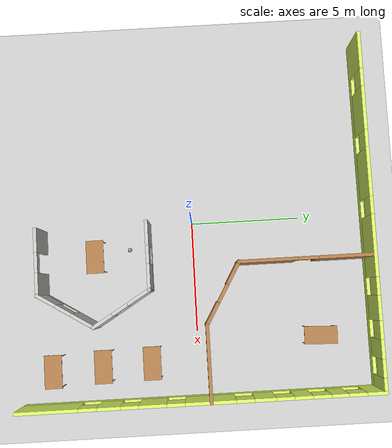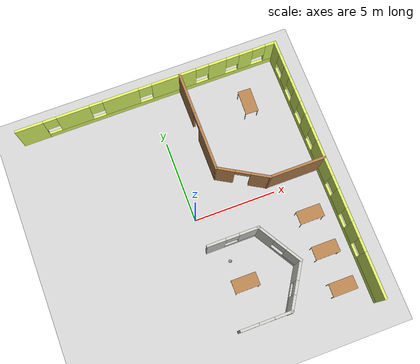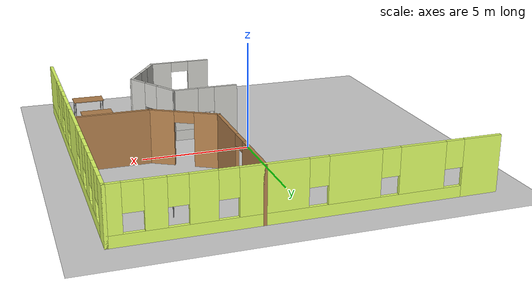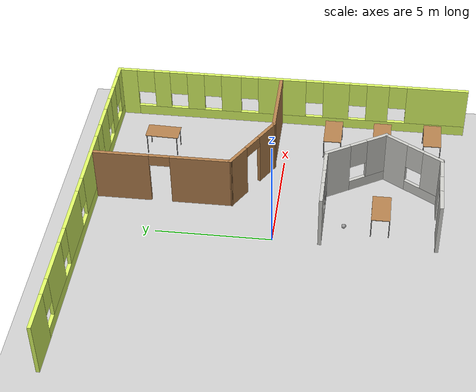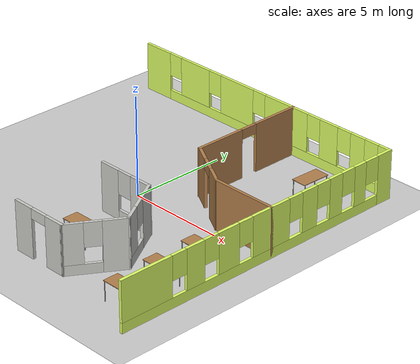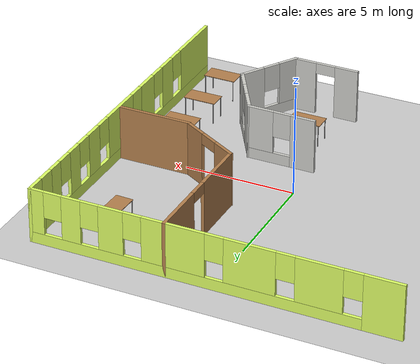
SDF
<sdf version="1.6">
 <world name="default">
  <model name="ground_plane">
   <static>1</static>
   <link name="link">
    <collision name="collision">
     <geometry><plane><normal>0 0 1</normal><size>100 100</size></plane></geometry>
     <surface>
      <contact><collide_bitmask>65535</collide_bitmask></contact>
      <friction><ode><mu>100</mu><mu2>50</mu2></ode></friction>
     </surface>
    </collision>
    <visual name="visual">
     <cast_shadows>0</cast_shadows>
     <geometry><plane><normal>0 0 1</normal><size>100 100</size></plane></geometry>
     <material>
      <script><uri>file://media/materials/scripts/gazebo.material</uri><name>Gazebo/Grey</name></script>
     </material>
    </visual>
   </link>
  </model>
  <model name="myBuilding">
   <pose>-0.01524 -2.0117 0 0 -0 0</pose>
   <link name="Wall_14">
    <pose>2.01524 7.0117 0 0 0 -1.5708</pose>
    <visual name="Wall_14_Visual_0">
     <pose>-1.79003 0 1.25 0 -0 0</pose>
     <geometry><box><size>2.56994 0.15 2.5</size></box></geometry>
     <material>
      <script><uri>file://media/materials/scripts/gazebo.material</uri><name>Gazebo/Wood</name></script>
      <ambient>1 0.976471 0.866667 1</ambient>
     </material>
     <meta><layer>0</layer></meta>
    </visual>
    <collision name="Wall_14_Collision_0">
     <geometry><box><size>2.56994 0.15 2.5</size></box></geometry>
     <pose>-1.79003 0 1.25 0 -0 0</pose>
    </collision>
    <visual name="Wall_14_Visual_1">
     <pose>1.73497 0 1.25 0 -0 0</pose>
     <geometry><box><size>2.68006 0.15 2.5</size></box></geometry>
     <material>
      <script><uri>file://media/materials/scripts/gazebo.material</uri><name>Gazebo/Wood</name></script>
      <ambient>1 0.976471 0.866667 1</ambient>
     </material>
     <meta><layer>0</layer></meta>
    </visual>
    <collision name="Wall_14_Collision_1">
     <geometry><box><size>2.68006 0.15 2.5</size></box></geometry>
     <pose>1.73497 0 1.25 0 -0 0</pose>
    </collision>
    <visual name="Wall_14_Visual_2">
     <pose>-0.055061 0 2.25 0 -0 0</pose>
     <geometry><box><size>0.9 0.15 0.5</size></box></geometry>
     <material>
      <script><uri>file://media/materials/scripts/gazebo.material</uri><name>Gazebo/Wood</name></script>
      <ambient>1 0.976471 0.866667 1</ambient>
     </material>
     <meta><layer>0</layer></meta>
    </visual>
    <collision name="Wall_14_Collision_2">
     <geometry><box><size>0.9 0.15 0.5</size></box></geometry>
     <pose>-0.055061 0 2.25 0 -0 0</pose>
    </collision>
   </link>
   <link name="Wall_16">
    <pose>3.35774 3.2367 0 0 0 -0.523547</pose>
    <visual name="Wall_16_Visual_0">
     <pose>-1.0429 0 1.25 0 -0 0</pose>
     <geometry><box><size>1.1642 0.15 2.5</size></box></geometry>
     <material>
      <script><uri>file://media/materials/scripts/gazebo.material</uri><name>Gazebo/Wood</name></script>
      <ambient>1 0.976471 0.866667 1</ambient>
     </material>
     <meta><layer>0</layer></meta>
    </visual>
    <collision name="Wall_16_Collision_0">
     <geometry><box><size>1.1642 0.15 2.5</size></box></geometry>
     <pose>-1.0429 0 1.25 0 -0 0</pose>
    </collision>
    <visual name="Wall_16_Visual_1">
     <pose>1.0321 0 1.25 0 -0 0</pose>
     <geometry><box><size>1.1858 0.15 2.5</size></box></geometry>
     <material>
      <script><uri>file://media/materials/scripts/gazebo.material</uri><name>Gazebo/Wood</name></script>
      <ambient>1 0.976471 0.866667 1</ambient>
     </material>
     <meta><layer>0</layer></meta>
    </visual>
    <collision name="Wall_16_Collision_1">
     <geometry><box><size>1.1858 0.15 2.5</size></box></geometry>
     <pose>1.0321 0 1.25 0 -0 0</pose>
    </collision>
    <visual name="Wall_16_Visual_2">
     <pose>-0.010799 0 2.25 0 -0 0</pose>
     <geometry><box><size>0.9 0.15 0.5</size></box></geometry>
     <material>
      <script><uri>file://media/materials/scripts/gazebo.material</uri><name>Gazebo/Wood</name></script>
      <ambient>1 0.976471 0.866667 1</ambient>
     </material>
     <meta><layer>0</layer></meta>
    </visual>
    <collision name="Wall_16_Collision_2">
     <geometry><box><size>0.9 0.15 0.5</size></box></geometry>
     <pose>-0.010799 0 2.25 0 -0 0</pose>
    </collision>
   </link>
   <link name="Wall_18">
    <collision name="Wall_18_Collision">
     <geometry><box><size>3.465 0.15 2.5</size></box></geometry>
     <pose>0 0 1.25 0 -0 0</pose>
    </collision>
    <visual name="Wall_18_Visual">
     <pose>0 0 1.25 0 -0 0</pose>
     <geometry><box><size>3.465 0.15 2.5</size></box></geometry>
     <material>
      <script><uri>file://media/materials/scripts/gazebo.material</uri><name>Gazebo/Wood</name></script>
      <ambient>1 0.976471 0.866667 1</ambient>
     </material>
     <meta><layer>0</layer></meta>
    </visual>
    <pose>6.35774 2.4617 0 0 -0 0</pose>
   </link>
   <link name="Wall_37">
    <pose>1.51524 0.011703 0 0 -0 0</pose>
    <visual name="Wall_37_Visual_0">
     <pose>-1.00885 0 1.25 0 -0 0</pose>
     <geometry><box><size>1.1323 0.15 2.5</size></box></geometry>
     <material>
      <script><uri>file://media/materials/scripts/gazebo.material</uri><name>Gazebo/CeilingTiled</name></script>
      <ambient>0.662745 0.929412 1 1</ambient>
     </material>
     <meta><layer>0</layer></meta>
    </visual>
    <collision name="Wall_37_Collision_0">
     <geometry><box><size>1.1323 0.15 2.5</size></box></geometry>
     <pose>-1.00885 0 1.25 0 -0 0</pose>
    </collision>
    <visual name="Wall_37_Visual_1">
     <pose>0.566152 0 0.25 0 -0 0</pose>
     <geometry><box><size>2.0177 0.15 0.5</size></box></geometry>
     <material>
      <script><uri>file://media/materials/scripts/gazebo.material</uri><name>Gazebo/CeilingTiled</name></script>
      <ambient>0.662745 0.929412 1 1</ambient>
     </material>
     <meta><layer>0</layer></meta>
    </visual>
    <collision name="Wall_37_Collision_1">
     <geometry><box><size>2.0177 0.15 0.5</size></box></geometry>
     <pose>0.566152 0 0.25 0 -0 0</pose>
    </collision>
    <visual name="Wall_37_Visual_2">
     <pose>0.966152 0 1.5 0 -0 0</pose>
     <geometry><box><size>1.2177 0.15 2</size></box></geometry>
     <material>
      <script><uri>file://media/materials/scripts/gazebo.material</uri><name>Gazebo/CeilingTiled</name></script>
      <ambient>0.662745 0.929412 1 1</ambient>
     </material>
     <meta><layer>0</layer></meta>
    </visual>
    <collision name="Wall_37_Collision_2">
     <geometry><box><size>1.2177 0.15 2</size></box></geometry>
     <pose>0.966152 0 1.5 0 -0 0</pose>
    </collision>
    <visual name="Wall_37_Visual_3">
     <pose>-0.042697 0 1.9 0 -0 0</pose>
     <geometry><box><size>0.8 0.15 1.2</size></box></geometry>
     <material>
      <script><uri>file://media/materials/scripts/gazebo.material</uri><name>Gazebo/CeilingTiled</name></script>
      <ambient>0.662745 0.929412 1 1</ambient>
     </material>
     <meta><layer>0</layer></meta>
    </visual>
    <collision name="Wall_37_Collision_3">
     <geometry><box><size>0.8 0.15 1.2</size></box></geometry>
     <pose>-0.042697 0 1.9 0 -0 0</pose>
    </collision>
   </link>
   <link name="Wall_4">
    <pose>0.015237 10.0117 0 0 -0 0</pose>
    <visual name="Wall_4_Visual_0">
     <pose>-7.22792 0 1.25 0 -0 0</pose>
     <geometry><box><size>1.69415 0.15 2.5</size></box></geometry>
     <material>
      <script><uri>file://media/materials/scripts/gazebo.material</uri><name>Gazebo/Grey</name></script>
      <ambient>0.870588 1 0.4 1</ambient>
     </material>
     <meta><layer>0</layer></meta>
    </visual>
    <collision name="Wall_4_Collision_0">
     <geometry><box><size>1.69415 0.15 2.5</size></box></geometry>
     <pose>-7.22792 0 1.25 0 -0 0</pose>
    </collision>
    <visual name="Wall_4_Visual_1">
     <pose>0.847076 0 0.25 0 -0 0</pose>
     <geometry><box><size>14.4558 0.15 0.5</size></box></geometry>
     <material>
      <script><uri>file://media/materials/scripts/gazebo.material</uri><name>Gazebo/Grey</name></script>
      <ambient>0.870588 1 0.4 1</ambient>
     </material>
     <meta><layer>0</layer></meta>
    </visual>
    <collision name="Wall_4_Collision_1">
     <geometry><box><size>14.4558 0.15 0.5</size></box></geometry>
     <pose>0.847076 0 0.25 0 -0 0</pose>
    </collision>
    <visual name="Wall_4_Visual_2">
     <pose>-4.58109 0 1.5 0 -0 0</pose>
     <geometry><box><size>1.99952 0.15 2</size></box></geometry>
     <material>
      <script><uri>file://media/materials/scripts/gazebo.material</uri><name>Gazebo/Grey</name></script>
      <ambient>0.870588 1 0.4 1</ambient>
     </material>
     <meta><layer>0</layer></meta>
    </visual>
    <collision name="Wall_4_Collision_2">
     <geometry><box><size>1.99952 0.15 2</size></box></geometry>
     <pose>-4.58109 0 1.5 0 -0 0</pose>
    </collision>
    <visual name="Wall_4_Visual_3">
     <pose>-1.6739 0 1.5 0 -0 0</pose>
     <geometry><box><size>2.21487 0.15 2</size></box></geometry>
     <material>
      <script><uri>file://media/materials/scripts/gazebo.material</uri><name>Gazebo/Grey</name></script>
      <ambient>0.870588 1 0.4 1</ambient>
     </material>
     <meta><layer>0</layer></meta>
    </visual>
    <collision name="Wall_4_Collision_3">
     <geometry><box><size>2.21487 0.15 2</size></box></geometry>
     <pose>-1.6739 0 1.5 0 -0 0</pose>
    </collision>
    <visual name="Wall_4_Visual_4">
     <pose>1.61784 0 1.5 0 -0 0</pose>
     <geometry><box><size>2.76862 0.15 2</size></box></geometry>
     <material>
      <script><uri>file://media/materials/scripts/gazebo.material</uri><name>Gazebo/Grey</name></script>
      <ambient>0.870588 1 0.4 1</ambient>
     </material>
     <meta><layer>0</layer></meta>
    </visual>
    <collision name="Wall_4_Collision_4">
     <geometry><box><size>2.76862 0.15 2</size></box></geometry>
     <pose>1.61784 0 1.5 0 -0 0</pose>
    </collision>
    <visual name="Wall_4_Visual_5">
     <pose>4.35583 0 1.5 0 -0 0</pose>
     <geometry><box><size>1.10736 0.15 2</size></box></geometry>
     <material>
      <script><uri>file://media/materials/scripts/gazebo.material</uri><name>Gazebo/Grey</name></script>
      <ambient>0.870588 1 0.4 1</ambient>
     </material>
     <meta><layer>0</layer></meta>
    </visual>
    <collision name="Wall_4_Collision_5">
     <geometry><box><size>1.10736 0.15 2</size></box></geometry>
     <pose>4.35583 0 1.5 0 -0 0</pose>
    </collision>
    <visual name="Wall_4_Visual_6">
     <pose>6.14014 0 1.5 0 -0 0</pose>
     <geometry><box><size>0.861253 0.15 2</size></box></geometry>
     <material>
      <script><uri>file://media/materials/scripts/gazebo.material</uri><name>Gazebo/Grey</name></script>
      <ambient>0.870588 1 0.4 1</ambient>
     </material>
     <meta><layer>0</layer></meta>
    </visual>
    <collision name="Wall_4_Collision_6">
     <geometry><box><size>0.861253 0.15 2</size></box></geometry>
     <pose>6.14014 0 1.5 0 -0 0</pose>
    </collision>
    <visual name="Wall_4_Visual_7">
     <pose>7.72288 0 1.5 0 -0 0</pose>
     <geometry><box><size>0.704231 0.15 2</size></box></geometry>
     <material>
      <script><uri>file://media/materials/scripts/gazebo.material</uri><name>Gazebo/Grey</name></script>
      <ambient>0.870588 1 0.4 1</ambient>
     </material>
     <meta><layer>0</layer></meta>
    </visual>
    <collision name="Wall_4_Collision_7">
     <geometry><box><size>0.704231 0.15 2</size></box></geometry>
     <pose>7.72288 0 1.5 0 -0 0</pose>
    </collision>
    <visual name="Wall_4_Visual_8">
     <pose>-5.98085 0 1.9 0 -0 0</pose>
     <geometry><box><size>0.8 0.15 1.2</size></box></geometry>
     <material>
      <script><uri>file://media/materials/scripts/gazebo.material</uri><name>Gazebo/Grey</name></script>
      <ambient>0.870588 1 0.4 1</ambient>
     </material>
     <meta><layer>0</layer></meta>
    </visual>
    <collision name="Wall_4_Collision_8">
     <geometry><box><size>0.8 0.15 1.2</size></box></geometry>
     <pose>-5.98085 0 1.9 0 -0 0</pose>
    </collision>
    <visual name="Wall_4_Visual_9">
     <pose>-3.18133 0 1.9 0 -0 0</pose>
     <geometry><box><size>0.8 0.15 1.2</size></box></geometry>
     <material>
      <script><uri>file://media/materials/scripts/gazebo.material</uri><name>Gazebo/Grey</name></script>
      <ambient>0.870588 1 0.4 1</ambient>
     </material>
     <meta><layer>0</layer></meta>
    </visual>
    <collision name="Wall_4_Collision_9">
     <geometry><box><size>0.8 0.15 1.2</size></box></geometry>
     <pose>-3.18133 0 1.9 0 -0 0</pose>
    </collision>
    <visual name="Wall_4_Visual_10">
     <pose>-0.166464 0 1.9 0 -0 0</pose>
     <geometry><box><size>0.8 0.15 1.2</size></box></geometry>
     <material>
      <script><uri>file://media/materials/scripts/gazebo.material</uri><name>Gazebo/Grey</name></script>
      <ambient>0.870588 1 0.4 1</ambient>
     </material>
     <meta><layer>0</layer></meta>
    </visual>
    <collision name="Wall_4_Collision_10">
     <geometry><box><size>0.8 0.15 1.2</size></box></geometry>
     <pose>-0.166464 0 1.9 0 -0 0</pose>
    </collision>
    <visual name="Wall_4_Visual_11">
     <pose>3.40215 0 1.9 0 -0 0</pose>
     <geometry><box><size>0.8 0.15 1.2</size></box></geometry>
     <material>
      <script><uri>file://media/materials/scripts/gazebo.material</uri><name>Gazebo/Grey</name></script>
      <ambient>0.870588 1 0.4 1</ambient>
     </material>
     <meta><layer>0</layer></meta>
    </visual>
    <collision name="Wall_4_Collision_11">
     <geometry><box><size>0.8 0.15 1.2</size></box></geometry>
     <pose>3.40215 0 1.9 0 -0 0</pose>
    </collision>
    <visual name="Wall_4_Visual_12">
     <pose>5.30952 0 1.9 0 -0 0</pose>
     <geometry><box><size>0.8 0.15 1.2</size></box></geometry>
     <material>
      <script><uri>file://media/materials/scripts/gazebo.material</uri><name>Gazebo/Grey</name></script>
      <ambient>0.870588 1 0.4 1</ambient>
     </material>
     <meta><layer>0</layer></meta>
    </visual>
    <collision name="Wall_4_Collision_12">
     <geometry><box><size>0.8 0.15 1.2</size></box></geometry>
     <pose>5.30952 0 1.9 0 -0 0</pose>
    </collision>
    <visual name="Wall_4_Visual_13">
     <pose>6.97077 0 1.9 0 -0 0</pose>
     <geometry><box><size>0.8 0.15 1.2</size></box></geometry>
     <material>
      <script><uri>file://media/materials/scripts/gazebo.material</uri><name>Gazebo/Grey</name></script>
      <ambient>0.870588 1 0.4 1</ambient>
     </material>
     <meta><layer>0</layer></meta>
    </visual>
    <collision name="Wall_4_Collision_13">
     <geometry><box><size>0.8 0.15 1.2</size></box></geometry>
     <pose>6.97077 0 1.9 0 -0 0</pose>
    </collision>
   </link>
   <link name="Wall_41">
    <pose>1.55274 -4.8883 0 0 -0 3.14159</pose>
    <visual name="Wall_41_Visual_0">
     <pose>-0.993879 0 1.25 0 -0 0</pose>
     <geometry><box><size>1.08724 0.15 2.5</size></box></geometry>
     <material>
      <script><uri>file://media/materials/scripts/gazebo.material</uri><name>Gazebo/CeilingTiled</name></script>
      <ambient>0.662745 0.929412 1 1</ambient>
     </material>
     <meta><layer>0</layer></meta>
    </visual>
    <collision name="Wall_41_Collision_0">
     <geometry><box><size>1.08724 0.15 2.5</size></box></geometry>
     <pose>-0.993879 0 1.25 0 -0 0</pose>
    </collision>
    <visual name="Wall_41_Visual_1">
     <pose>0.993621 0 1.25 0 -0 0</pose>
     <geometry><box><size>1.08776 0.15 2.5</size></box></geometry>
     <material>
      <script><uri>file://media/materials/scripts/gazebo.material</uri><name>Gazebo/CeilingTiled</name></script>
      <ambient>0.662745 0.929412 1 1</ambient>
     </material>
     <meta><layer>0</layer></meta>
    </visual>
    <collision name="Wall_41_Collision_1">
     <geometry><box><size>1.08776 0.15 2.5</size></box></geometry>
     <pose>0.993621 0 1.25 0 -0 0</pose>
    </collision>
    <visual name="Wall_41_Visual_2">
     <pose>-0.000257 0 2.25 0 -0 0</pose>
     <geometry><box><size>0.9 0.15 0.5</size></box></geometry>
     <material>
      <script><uri>file://media/materials/scripts/gazebo.material</uri><name>Gazebo/CeilingTiled</name></script>
      <ambient>0.662745 0.929412 1 1</ambient>
     </material>
     <meta><layer>0</layer></meta>
    </visual>
    <collision name="Wall_41_Collision_2">
     <geometry><box><size>0.9 0.15 0.5</size></box></geometry>
     <pose>-0.000257 0 2.25 0 -0 0</pose>
    </collision>
   </link>
   <link name="Wall_49">
    <pose>3.76524 -1.2383 0 0 0 -1.03038</pose>
    <visual name="Wall_49_Visual_0">
     <pose>-0.922396 0 1.25 0 -0 0</pose>
     <geometry><box><size>1.22069 0.15 2.5</size></box></geometry>
     <material>
      <script><uri>file://media/materials/scripts/gazebo.material</uri><name>Gazebo/CeilingTiled</name></script>
      <ambient>0.662745 0.929412 1 1</ambient>
     </material>
     <meta><layer>0</layer></meta>
    </visual>
    <collision name="Wall_49_Collision_0">
     <geometry><box><size>1.22069 0.15 2.5</size></box></geometry>
     <pose>-0.922396 0 1.25 0 -0 0</pose>
    </collision>
    <visual name="Wall_49_Visual_1">
     <pose>0.610342 0 0.25 0 -0 0</pose>
     <geometry><box><size>1.84479 0.15 0.5</size></box></geometry>
     <material>
      <script><uri>file://media/materials/scripts/gazebo.material</uri><name>Gazebo/CeilingTiled</name></script>
      <ambient>0.662745 0.929412 1 1</ambient>
     </material>
     <meta><layer>0</layer></meta>
    </visual>
    <collision name="Wall_49_Collision_1">
     <geometry><box><size>1.84479 0.15 0.5</size></box></geometry>
     <pose>0.610342 0 0.25 0 -0 0</pose>
    </collision>
    <visual name="Wall_49_Visual_2">
     <pose>1.01034 0 1.5 0 -0 0</pose>
     <geometry><box><size>1.04479 0.15 2</size></box></geometry>
     <material>
      <script><uri>file://media/materials/scripts/gazebo.material</uri><name>Gazebo/CeilingTiled</name></script>
      <ambient>0.662745 0.929412 1 1</ambient>
     </material>
     <meta><layer>0</layer></meta>
    </visual>
    <collision name="Wall_49_Collision_2">
     <geometry><box><size>1.04479 0.15 2</size></box></geometry>
     <pose>1.01034 0 1.5 0 -0 0</pose>
    </collision>
    <visual name="Wall_49_Visual_3">
     <pose>0.087947 0 1.9 0 -0 0</pose>
     <geometry><box><size>0.8 0.15 1.2</size></box></geometry>
     <material>
      <script><uri>file://media/materials/scripts/gazebo.material</uri><name>Gazebo/CeilingTiled</name></script>
      <ambient>0.662745 0.929412 1 1</ambient>
     </material>
     <meta><layer>0</layer></meta>
    </visual>
    <collision name="Wall_49_Collision_3">
     <geometry><box><size>0.8 0.15 1.2</size></box></geometry>
     <pose>0.087947 0 1.9 0 -0 0</pose>
    </collision>
   </link>
   <link name="Wall_50">
    <pose>3.76524 -3.6883 0 0 0 -2.1294</pose>
    <visual name="Wall_50_Visual_0">
     <pose>-0.889397 0 1.25 0 -0 0</pose>
     <geometry><box><size>1.2014 0.15 2.5</size></box></geometry>
     <material>
      <script><uri>file://media/materials/scripts/gazebo.material</uri><name>Gazebo/CeilingTiled</name></script>
      <ambient>0.662745 0.929412 1 1</ambient>
     </material>
     <meta><layer>0</layer></meta>
    </visual>
    <collision name="Wall_50_Collision_0">
     <geometry><box><size>1.2014 0.15 2.5</size></box></geometry>
     <pose>-0.889397 0 1.25 0 -0 0</pose>
    </collision>
    <visual name="Wall_50_Visual_1">
     <pose>0.6007 0 0.25 0 -0 0</pose>
     <geometry><box><size>1.77879 0.15 0.5</size></box></geometry>
     <material>
      <script><uri>file://media/materials/scripts/gazebo.material</uri><name>Gazebo/CeilingTiled</name></script>
      <ambient>0.662745 0.929412 1 1</ambient>
     </material>
     <meta><layer>0</layer></meta>
    </visual>
    <collision name="Wall_50_Collision_1">
     <geometry><box><size>1.77879 0.15 0.5</size></box></geometry>
     <pose>0.6007 0 0.25 0 -0 0</pose>
    </collision>
    <visual name="Wall_50_Visual_2">
     <pose>1.0007 0 1.5 0 -0 0</pose>
     <geometry><box><size>0.978794 0.15 2</size></box></geometry>
     <material>
      <script><uri>file://media/materials/scripts/gazebo.material</uri><name>Gazebo/CeilingTiled</name></script>
      <ambient>0.662745 0.929412 1 1</ambient>
     </material>
     <meta><layer>0</layer></meta>
    </visual>
    <collision name="Wall_50_Collision_2">
     <geometry><box><size>0.978794 0.15 2</size></box></geometry>
     <pose>1.0007 0 1.5 0 -0 0</pose>
    </collision>
    <visual name="Wall_50_Visual_3">
     <pose>0.111303 0 1.9 0 -0 0</pose>
     <geometry><box><size>0.8 0.15 1.2</size></box></geometry>
     <material>
      <script><uri>file://media/materials/scripts/gazebo.material</uri><name>Gazebo/CeilingTiled</name></script>
      <ambient>0.662745 0.929412 1 1</ambient>
     </material>
     <meta><layer>0</layer></meta>
    </visual>
    <collision name="Wall_50_Collision_3">
     <geometry><box><size>0.8 0.15 1.2</size></box></geometry>
     <pose>0.111303 0 1.9 0 -0 0</pose>
    </collision>
   </link>
   <link name="Wall_6">
    <pose>8.01524 2.0117 0 0 0 -1.5708</pose>
    <visual name="Wall_6_Visual_0">
     <pose>-7.62793 0 1.25 0 -0 0</pose>
     <geometry><box><size>0.89414 0.15 2.5</size></box></geometry>
     <material>
      <script><uri>file://media/materials/scripts/gazebo.material</uri><name>Gazebo/Grey</name></script>
      <ambient>0.870588 1 0.4 1</ambient>
     </material>
     <meta><layer>0</layer></meta>
    </visual>
    <collision name="Wall_6_Collision_0">
     <geometry><box><size>0.89414 0.15 2.5</size></box></geometry>
     <pose>-7.62793 0 1.25 0 -0 0</pose>
    </collision>
    <visual name="Wall_6_Visual_1">
     <pose>0.44707 0 0.25 0 -0 0</pose>
     <geometry><box><size>15.2559 0.15 0.5</size></box></geometry>
     <material>
      <script><uri>file://media/materials/scripts/gazebo.material</uri><name>Gazebo/Grey</name></script>
      <ambient>0.870588 1 0.4 1</ambient>
     </material>
     <meta><layer>0</layer></meta>
    </visual>
    <collision name="Wall_6_Collision_1">
     <geometry><box><size>15.2559 0.15 0.5</size></box></geometry>
     <pose>0.44707 0 0.25 0 -0 0</pose>
    </collision>
    <visual name="Wall_6_Visual_2">
     <pose>-6.01176 0 1.5 0 -0 0</pose>
     <geometry><box><size>0.738197 0.15 2</size></box></geometry>
     <material>
      <script><uri>file://media/materials/scripts/gazebo.material</uri><name>Gazebo/Grey</name></script>
      <ambient>0.870588 1 0.4 1</ambient>
     </material>
     <meta><layer>0</layer></meta>
    </visual>
    <collision name="Wall_6_Collision_2">
     <geometry><box><size>0.738197 0.15 2</size></box></geometry>
     <pose>-6.01176 0 1.5 0 -0 0</pose>
    </collision>
    <visual name="Wall_6_Visual_3">
     <pose>-4.4428 0 1.5 0 -0 0</pose>
     <geometry><box><size>0.799725 0.15 2</size></box></geometry>
     <material>
      <script><uri>file://media/materials/scripts/gazebo.material</uri><name>Gazebo/Grey</name></script>
      <ambient>0.870588 1 0.4 1</ambient>
     </material>
     <meta><layer>0</layer></meta>
    </visual>
    <collision name="Wall_6_Collision_3">
     <geometry><box><size>0.799725 0.15 2</size></box></geometry>
     <pose>-4.4428 0 1.5 0 -0 0</pose>
    </collision>
    <visual name="Wall_6_Visual_4">
     <pose>-2.78155 0 1.5 0 -0 0</pose>
     <geometry><box><size>0.922781 0.15 2</size></box></geometry>
     <material>
      <script><uri>file://media/materials/scripts/gazebo.material</uri><name>Gazebo/Grey</name></script>
      <ambient>0.870588 1 0.4 1</ambient>
     </material>
     <meta><layer>0</layer></meta>
    </visual>
    <collision name="Wall_6_Collision_4">
     <geometry><box><size>0.922781 0.15 2</size></box></geometry>
     <pose>-2.78155 0 1.5 0 -0 0</pose>
    </collision>
    <visual name="Wall_6_Visual_5">
     <pose>-0.412725 0 1.5 0 -0 0</pose>
     <geometry><box><size>2.21487 0.15 2</size></box></geometry>
     <material>
      <script><uri>file://media/materials/scripts/gazebo.material</uri><name>Gazebo/Grey</name></script>
      <ambient>0.870588 1 0.4 1</ambient>
     </material>
     <meta><layer>0</layer></meta>
    </visual>
    <collision name="Wall_6_Collision_5">
     <geometry><box><size>2.21487 0.15 2</size></box></geometry>
     <pose>-0.412725 0 1.5 0 -0 0</pose>
    </collision>
    <visual name="Wall_6_Visual_6">
     <pose>2.09454 0 1.5 0 -0 0</pose>
     <geometry><box><size>1.19966 0.15 2</size></box></geometry>
     <material>
      <script><uri>file://media/materials/scripts/gazebo.material</uri><name>Gazebo/Grey</name></script>
      <ambient>0.870588 1 0.4 1</ambient>
     </material>
     <meta><layer>0</layer></meta>
    </visual>
    <collision name="Wall_6_Collision_6">
     <geometry><box><size>1.19966 0.15 2</size></box></geometry>
     <pose>2.09454 0 1.5 0 -0 0</pose>
    </collision>
    <visual name="Wall_6_Visual_7">
     <pose>4.0019 0 1.5 0 -0 0</pose>
     <geometry><box><size>1.01507 0.15 2</size></box></geometry>
     <material>
      <script><uri>file://media/materials/scripts/gazebo.material</uri><name>Gazebo/Grey</name></script>
      <ambient>0.870588 1 0.4 1</ambient>
     </material>
     <meta><layer>0</layer></meta>
    </visual>
    <collision name="Wall_6_Collision_7">
     <geometry><box><size>1.01507 0.15 2</size></box></geometry>
     <pose>4.0019 0 1.5 0 -0 0</pose>
    </collision>
    <visual name="Wall_6_Visual_8">
     <pose>6.69222 0 1.5 0 -0 0</pose>
     <geometry><box><size>2.76556 0.15 2</size></box></geometry>
     <material>
      <script><uri>file://media/materials/scripts/gazebo.material</uri><name>Gazebo/Grey</name></script>
      <ambient>0.870588 1 0.4 1</ambient>
     </material>
     <meta><layer>0</layer></meta>
    </visual>
    <collision name="Wall_6_Collision_8">
     <geometry><box><size>2.76556 0.15 2</size></box></geometry>
     <pose>6.69222 0 1.5 0 -0 0</pose>
    </collision>
    <visual name="Wall_6_Visual_9">
     <pose>-6.78086 0 1.9 0 -0 0</pose>
     <geometry><box><size>0.8 0.15 1.2</size></box></geometry>
     <material>
      <script><uri>file://media/materials/scripts/gazebo.material</uri><name>Gazebo/Grey</name></script>
      <ambient>0.870588 1 0.4 1</ambient>
     </material>
     <meta><layer>0</layer></meta>
    </visual>
    <collision name="Wall_6_Collision_9">
     <geometry><box><size>0.8 0.15 1.2</size></box></geometry>
     <pose>-6.78086 0 1.9 0 -0 0</pose>
    </collision>
    <visual name="Wall_6_Visual_10">
     <pose>-5.24266 0 1.9 0 -0 0</pose>
     <geometry><box><size>0.8 0.15 1.2</size></box></geometry>
     <material>
      <script><uri>file://media/materials/scripts/gazebo.material</uri><name>Gazebo/Grey</name></script>
      <ambient>0.870588 1 0.4 1</ambient>
     </material>
     <meta><layer>0</layer></meta>
    </visual>
    <collision name="Wall_6_Collision_10">
     <geometry><box><size>0.8 0.15 1.2</size></box></geometry>
     <pose>-5.24266 0 1.9 0 -0 0</pose>
    </collision>
    <visual name="Wall_6_Visual_11">
     <pose>-3.64294 0 1.9 0 -0 0</pose>
     <geometry><box><size>0.8 0.15 1.2</size></box></geometry>
     <material>
      <script><uri>file://media/materials/scripts/gazebo.material</uri><name>Gazebo/Grey</name></script>
      <ambient>0.870588 1 0.4 1</ambient>
     </material>
     <meta><layer>0</layer></meta>
    </visual>
    <collision name="Wall_6_Collision_11">
     <geometry><box><size>0.8 0.15 1.2</size></box></geometry>
     <pose>-3.64294 0 1.9 0 -0 0</pose>
    </collision>
    <visual name="Wall_6_Visual_12">
     <pose>-1.92016 0 1.9 0 -0 0</pose>
     <geometry><box><size>0.8 0.15 1.2</size></box></geometry>
     <material>
      <script><uri>file://media/materials/scripts/gazebo.material</uri><name>Gazebo/Grey</name></script>
      <ambient>0.870588 1 0.4 1</ambient>
     </material>
     <meta><layer>0</layer></meta>
    </visual>
    <collision name="Wall_6_Collision_12">
     <geometry><box><size>0.8 0.15 1.2</size></box></geometry>
     <pose>-1.92016 0 1.9 0 -0 0</pose>
    </collision>
    <visual name="Wall_6_Visual_13">
     <pose>1.09471 0 1.9 0 -0 0</pose>
     <geometry><box><size>0.8 0.15 1.2</size></box></geometry>
     <material>
      <script><uri>file://media/materials/scripts/gazebo.material</uri><name>Gazebo/Grey</name></script>
      <ambient>0.870588 1 0.4 1</ambient>
     </material>
     <meta><layer>0</layer></meta>
    </visual>
    <collision name="Wall_6_Collision_13">
     <geometry><box><size>0.8 0.15 1.2</size></box></geometry>
     <pose>1.09471 0 1.9 0 -0 0</pose>
    </collision>
    <visual name="Wall_6_Visual_14">
     <pose>3.09436 0 1.9 0 -0 0</pose>
     <geometry><box><size>0.8 0.15 1.2</size></box></geometry>
     <material>
      <script><uri>file://media/materials/scripts/gazebo.material</uri><name>Gazebo/Grey</name></script>
      <ambient>0.870588 1 0.4 1</ambient>
     </material>
     <meta><layer>0</layer></meta>
    </visual>
    <collision name="Wall_6_Collision_14">
     <geometry><box><size>0.8 0.15 1.2</size></box></geometry>
     <pose>3.09436 0 1.9 0 -0 0</pose>
    </collision>
    <visual name="Wall_6_Visual_15">
     <pose>4.90944 0 1.9 0 -0 0</pose>
     <geometry><box><size>0.8 0.15 1.2</size></box></geometry>
     <material>
      <script><uri>file://media/materials/scripts/gazebo.material</uri><name>Gazebo/Grey</name></script>
      <ambient>0.870588 1 0.4 1</ambient>
     </material>
     <meta><layer>0</layer></meta>
    </visual>
    <collision name="Wall_6_Collision_15">
     <geometry><box><size>0.8 0.15 1.2</size></box></geometry>
     <pose>4.90944 0 1.9 0 -0 0</pose>
    </collision>
   </link>
   <static>1</static>
  </model>
  <model name="table_4">
   <static>1</static>
   <link name="link">
    <collision name="surface">
     <pose>0 0 1 0 -0 0</pose>
     <geometry><box><size>1.5 0.8 0.03</size></box></geometry>
     <surface><friction><ode><mu>0.6</mu><mu2>0.6</mu2></ode></friction></surface>
    </collision>
    <visual name="visual1">
     <pose>0 0 1 0 -0 0</pose>
     <geometry><box><size>1.5 0.8 0.03</size></box></geometry>
     <material>
      <script><uri>file://media/materials/scripts/gazebo.material</uri><name>Gazebo/Wood</name></script>
     </material>
    </visual>
    <collision name="front_left_leg">
     <pose>0.68 0.38 0.5 0 -0 0</pose>
     <geometry><cylinder><radius>0.02</radius><length>1</length></cylinder></geometry>
    </collision>
    <visual name="front_left_leg">
     <pose>0.68 0.38 0.5 0 -0 0</pose>
     <geometry><cylinder><radius>0.02</radius><length>1</length></cylinder></geometry>
     <material>
      <script><uri>file://media/materials/scripts/gazebo.material</uri><name>Gazebo/Grey</name></script>
     </material>
    </visual>
    <collision name="front_right_leg">
     <pose>0.68 -0.38 0.5 0 -0 0</pose>
     <geometry><cylinder><radius>0.02</radius><length>1</length></cylinder></geometry>
    </collision>
    <visual name="front_right_leg">
     <pose>0.68 -0.38 0.5 0 -0 0</pose>
     <geometry><cylinder><radius>0.02</radius><length>1</length></cylinder></geometry>
     <material>
      <script><uri>file://media/materials/scripts/gazebo.material</uri><name>Gazebo/Grey</name></script>
     </material>
    </visual>
    <collision name="back_right_leg">
     <pose>-0.68 -0.38 0.5 0 -0 0</pose>
     <geometry><cylinder><radius>0.02</radius><length>1</length></cylinder></geometry>
    </collision>
    <visual name="back_right_leg">
     <pose>-0.68 -0.38 0.5 0 -0 0</pose>
     <geometry><cylinder><radius>0.02</radius><length>1</length></cylinder></geometry>
     <material>
      <script><uri>file://media/materials/scripts/gazebo.material</uri><name>Gazebo/Grey</name></script>
     </material>
    </visual>
    <collision name="back_left_leg">
     <pose>-0.68 0.38 0.5 0 -0 0</pose>
     <geometry><cylinder><radius>0.02</radius><length>1</length></cylinder></geometry>
    </collision>
    <visual name="back_left_leg">
     <pose>-0.68 0.38 0.5 0 -0 0</pose>
     <geometry><cylinder><radius>0.02</radius><length>1</length></cylinder></geometry>
     <material>
      <script><uri>file://media/materials/scripts/gazebo.material</uri><name>Gazebo/Grey</name></script>
     </material>
    </visual>
   </link>
   <pose>5.46255 5.57748 0 0 0 -1.60604</pose>
  </model>
  <model name="table_5">
   <static>1</static>
   <link name="link">
    <collision name="surface">
     <pose>0 0 1 0 -0 0</pose>
     <geometry><box><size>1.5 0.8 0.03</size></box></geometry>
     <surface><friction><ode><mu>0.6</mu><mu2>0.6</mu2></ode></friction></surface>
    </collision>
    <visual name="visual1">
     <pose>0 0 1 0 -0 0</pose>
     <geometry><box><size>1.5 0.8 0.03</size></box></geometry>
     <material>
      <script><uri>file://media/materials/scripts/gazebo.material</uri><name>Gazebo/Wood</name></script>
     </material>
    </visual>
    <collision name="front_left_leg">
     <pose>0.68 0.38 0.5 0 -0 0</pose>
     <geometry><cylinder><radius>0.02</radius><length>1</length></cylinder></geometry>
    </collision>
    <visual name="front_left_leg">
     <pose>0.68 0.38 0.5 0 -0 0</pose>
     <geometry><cylinder><radius>0.02</radius><length>1</length></cylinder></geometry>
     <material>
      <script><uri>file://media/materials/scripts/gazebo.material</uri><name>Gazebo/Grey</name></script>
     </material>
    </visual>
    <collision name="front_right_leg">
     <pose>0.68 -0.38 0.5 0 -0 0</pose>
     <geometry><cylinder><radius>0.02</radius><length>1</length></cylinder></geometry>
    </collision>
    <visual name="front_right_leg">
     <pose>0.68 -0.38 0.5 0 -0 0</pose>
     <geometry><cylinder><radius>0.02</radius><length>1</length></cylinder></geometry>
     <material>
      <script><uri>file://media/materials/scripts/gazebo.material</uri><name>Gazebo/Grey</name></script>
     </material>
    </visual>
    <collision name="back_right_leg">
     <pose>-0.68 -0.38 0.5 0 -0 0</pose>
     <geometry><cylinder><radius>0.02</radius><length>1</length></cylinder></geometry>
    </collision>
    <visual name="back_right_leg">
     <pose>-0.68 -0.38 0.5 0 -0 0</pose>
     <geometry><cylinder><radius>0.02</radius><length>1</length></cylinder></geometry>
     <material>
      <script><uri>file://media/materials/scripts/gazebo.material</uri><name>Gazebo/Grey</name></script>
     </material>
    </visual>
    <collision name="back_left_leg">
     <pose>-0.68 0.38 0.5 0 -0 0</pose>
     <geometry><cylinder><radius>0.02</radius><length>1</length></cylinder></geometry>
    </collision>
    <visual name="back_left_leg">
     <pose>-0.68 0.38 0.5 0 -0 0</pose>
     <geometry><cylinder><radius>0.02</radius><length>1</length></cylinder></geometry>
     <material>
      <script><uri>file://media/materials/scripts/gazebo.material</uri><name>Gazebo/Grey</name></script>
     </material>
    </visual>
   </link>
   <pose>1.35787 -4.49812 0 0 -0 0</pose>
  </model>
  <model name="table_6">
   <static>1</static>
   <link name="link">
    <collision name="surface">
     <pose>0 0 1 0 -0 0</pose>
     <geometry><box><size>1.5 0.8 0.03</size></box></geometry>
     <surface><friction><ode><mu>0.6</mu><mu2>0.6</mu2></ode></friction></surface>
    </collision>
    <visual name="visual1">
     <pose>0 0 1 0 -0 0</pose>
     <geometry><box><size>1.5 0.8 0.03</size></box></geometry>
     <material>
      <script><uri>file://media/materials/scripts/gazebo.material</uri><name>Gazebo/Wood</name></script>
     </material>
    </visual>
    <collision name="front_left_leg">
     <pose>0.68 0.38 0.5 0 -0 0</pose>
     <geometry><cylinder><radius>0.02</radius><length>1</length></cylinder></geometry>
    </collision>
    <visual name="front_left_leg">
     <pose>0.68 0.38 0.5 0 -0 0</pose>
     <geometry><cylinder><radius>0.02</radius><length>1</length></cylinder></geometry>
     <material>
      <script><uri>file://media/materials/scripts/gazebo.material</uri><name>Gazebo/Grey</name></script>
     </material>
    </visual>
    <collision name="front_right_leg">
     <pose>0.68 -0.38 0.5 0 -0 0</pose>
     <geometry><cylinder><radius>0.02</radius><length>1</length></cylinder></geometry>
    </collision>
    <visual name="front_right_leg">
     <pose>0.68 -0.38 0.5 0 -0 0</pose>
     <geometry><cylinder><radius>0.02</radius><length>1</length></cylinder></geometry>
     <material>
      <script><uri>file://media/materials/scripts/gazebo.material</uri><name>Gazebo/Grey</name></script>
     </material>
    </visual>
    <collision name="back_right_leg">
     <pose>-0.68 -0.38 0.5 0 -0 0</pose>
     <geometry><cylinder><radius>0.02</radius><length>1</length></cylinder></geometry>
    </collision>
    <visual name="back_right_leg">
     <pose>-0.68 -0.38 0.5 0 -0 0</pose>
     <geometry><cylinder><radius>0.02</radius><length>1</length></cylinder></geometry>
     <material>
      <script><uri>file://media/materials/scripts/gazebo.material</uri><name>Gazebo/Grey</name></script>
     </material>
    </visual>
    <collision name="back_left_leg">
     <pose>-0.68 0.38 0.5 0 -0 0</pose>
     <geometry><cylinder><radius>0.02</radius><length>1</length></cylinder></geometry>
    </collision>
    <visual name="back_left_leg">
     <pose>-0.68 0.38 0.5 0 -0 0</pose>
     <geometry><cylinder><radius>0.02</radius><length>1</length></cylinder></geometry>
     <material>
      <script><uri>file://media/materials/scripts/gazebo.material</uri><name>Gazebo/Grey</name></script>
     </material>
    </visual>
   </link>
   <pose>6.29969 -2.1127 0 0 -0 0</pose>
  </model>
  <model name="table_7">
   <static>1</static>
   <link name="link">
    <collision name="surface">
     <pose>0 0 1 0 -0 0</pose>
     <geometry><box><size>1.5 0.8 0.03</size></box></geometry>
     <surface><friction><ode><mu>0.6</mu><mu2>0.6</mu2></ode></friction></surface>
    </collision>
    <visual name="visual1">
     <pose>0 0 1 0 -0 0</pose>
     <geometry><box><size>1.5 0.8 0.03</size></box></geometry>
     <material>
      <script><uri>file://media/materials/scripts/gazebo.material</uri><name>Gazebo/Wood</name></script>
     </material>
    </visual>
    <collision name="front_left_leg">
     <pose>0.68 0.38 0.5 0 -0 0</pose>
     <geometry><cylinder><radius>0.02</radius><length>1</length></cylinder></geometry>
    </collision>
    <visual name="front_left_leg">
     <pose>0.68 0.38 0.5 0 -0 0</pose>
     <geometry><cylinder><radius>0.02</radius><length>1</length></cylinder></geometry>
     <material>
      <script><uri>file://media/materials/scripts/gazebo.material</uri><name>Gazebo/Grey</name></script>
     </material>
    </visual>
    <collision name="front_right_leg">
     <pose>0.68 -0.38 0.5 0 -0 0</pose>
     <geometry><cylinder><radius>0.02</radius><length>1</length></cylinder></geometry>
    </collision>
    <visual name="front_right_leg">
     <pose>0.68 -0.38 0.5 0 -0 0</pose>
     <geometry><cylinder><radius>0.02</radius><length>1</length></cylinder></geometry>
     <material>
      <script><uri>file://media/materials/scripts/gazebo.material</uri><name>Gazebo/Grey</name></script>
     </material>
    </visual>
    <collision name="back_right_leg">
     <pose>-0.68 -0.38 0.5 0 -0 0</pose>
     <geometry><cylinder><radius>0.02</radius><length>1</length></cylinder></geometry>
    </collision>
    <visual name="back_right_leg">
     <pose>-0.68 -0.38 0.5 0 -0 0</pose>
     <geometry><cylinder><radius>0.02</radius><length>1</length></cylinder></geometry>
     <material>
      <script><uri>file://media/materials/scripts/gazebo.material</uri><name>Gazebo/Grey</name></script>
     </material>
    </visual>
    <collision name="back_left_leg">
     <pose>-0.68 0.38 0.5 0 -0 0</pose>
     <geometry><cylinder><radius>0.02</radius><length>1</length></cylinder></geometry>
    </collision>
    <visual name="back_left_leg">
     <pose>-0.68 0.38 0.5 0 -0 0</pose>
     <geometry><cylinder><radius>0.02</radius><length>1</length></cylinder></geometry>
     <material>
      <script><uri>file://media/materials/scripts/gazebo.material</uri><name>Gazebo/Grey</name></script>
     </material>
    </visual>
   </link>
   <pose>6.3394 -4.32506 0 0 -0 0</pose>
  </model>
  <model name="table_8">
   <static>1</static>
   <link name="link">
    <collision name="surface">
     <pose>0 0 1 0 -0 0</pose>
     <geometry><box><size>1.5 0.8 0.03</size></box></geometry>
     <surface><friction><ode><mu>0.6</mu><mu2>0.6</mu2></ode></friction></surface>
    </collision>
    <visual name="visual1">
     <pose>0 0 1 0 -0 0</pose>
     <geometry><box><size>1.5 0.8 0.03</size></box></geometry>
     <material>
      <script><uri>file://media/materials/scripts/gazebo.material</uri><name>Gazebo/Wood</name></script>
     </material>
    </visual>
    <collision name="front_left_leg">
     <pose>0.68 0.38 0.5 0 -0 0</pose>
     <geometry><cylinder><radius>0.02</radius><length>1</length></cylinder></geometry>
    </collision>
    <visual name="front_left_leg">
     <pose>0.68 0.38 0.5 0 -0 0</pose>
     <geometry><cylinder><radius>0.02</radius><length>1</length></cylinder></geometry>
     <material>
      <script><uri>file://media/materials/scripts/gazebo.material</uri><name>Gazebo/Grey</name></script>
     </material>
    </visual>
    <collision name="front_right_leg">
     <pose>0.68 -0.38 0.5 0 -0 0</pose>
     <geometry><cylinder><radius>0.02</radius><length>1</length></cylinder></geometry>
    </collision>
    <visual name="front_right_leg">
     <pose>0.68 -0.38 0.5 0 -0 0</pose>
     <geometry><cylinder><radius>0.02</radius><length>1</length></cylinder></geometry>
     <material>
      <script><uri>file://media/materials/scripts/gazebo.material</uri><name>Gazebo/Grey</name></script>
     </material>
    </visual>
    <collision name="back_right_leg">
     <pose>-0.68 -0.38 0.5 0 -0 0</pose>
     <geometry><cylinder><radius>0.02</radius><length>1</length></cylinder></geometry>
    </collision>
    <visual name="back_right_leg">
     <pose>-0.68 -0.38 0.5 0 -0 0</pose>
     <geometry><cylinder><radius>0.02</radius><length>1</length></cylinder></geometry>
     <material>
      <script><uri>file://media/materials/scripts/gazebo.material</uri><name>Gazebo/Grey</name></script>
     </material>
    </visual>
    <collision name="back_left_leg">
     <pose>-0.68 0.38 0.5 0 -0 0</pose>
     <geometry><cylinder><radius>0.02</radius><length>1</length></cylinder></geometry>
    </collision>
    <visual name="back_left_leg">
     <pose>-0.68 0.38 0.5 0 -0 0</pose>
     <geometry><cylinder><radius>0.02</radius><length>1</length></cylinder></geometry>
     <material>
      <script><uri>file://media/materials/scripts/gazebo.material</uri><name>Gazebo/Grey</name></script>
     </material>
    </visual>
   </link>
   <pose>6.43957 -6.58903 0 0 -0 0</pose>
  </model>
  <model name="my_ball">
   <link name="link_0">
    <inertial>
     <mass>1</mass>
     <inertia><ixx>0.1</ixx><ixy>0</ixy><ixz>0</ixz><iyy>0.1</iyy><iyz>0</iyz><izz>0.1</izz></inertia>
    </inertial>
    <visual name="visual">
     <geometry><sphere><radius>0.1</radius></sphere></geometry>
     <material>
      <lighting>1</lighting>
      <script><uri>file://media/materials/scripts/gazebo.material</uri><name>Gazebo/Grey</name></script>
      <shader type="pixel"><normal_map>__default__</normal_map></shader>
      <ambient>1 1 1 1</ambient>
      <diffuse>1 1 1 1</diffuse>
      <specular>1 1 1 1</specular>
      <emissive>1 1 1 1</emissive>
     </material>
    </visual>
    <collision name="collision">
     <geometry><sphere><radius>0.1</radius></sphere></geometry>
     <surface>
      <friction>
       <ode><mu>1</mu><mu2>1</mu2><fdir1>0 0 0</fdir1><slip1>0</slip1><slip2>0</slip2></ode>
       <torsional>
        <coefficient>1</coefficient>
        <patch_radius>0</patch_radius>
        <surface_radius>0</surface_radius>
        <use_patch_radius>1</use_patch_radius>
        <ode><slip>0</slip></ode>
       </torsional>
      </friction>
      <bounce><restitution_coefficient>0</restitution_coefficient><threshold>1e+06</threshold></bounce>
      <contact>
       <collide_without_contact>0</collide_without_contact>
       <collide_without_contact_bitmask>1</collide_without_contact_bitmask>
       <collide_bitmask>1</collide_bitmask>
       <ode>
        <soft_cfm>0</soft_cfm>
        <soft_erp>0.2</soft_erp>
        <kp>1e+13</kp>
        <kd>1</kd>
        <max_vel>0.01</max_vel>
        <min_depth>0</min_depth>
       </ode>
       <bullet>
        <split_impulse>1</split_impulse>
        <split_impulse_penetration_threshold>-0.01</split_impulse_penetration_threshold>
        <soft_cfm>0</soft_cfm>
        <soft_erp>0.2</soft_erp>
        <kp>1e+13</kp>
        <kd>1</kd>
       </bullet>
      </contact>
     </surface>
    </collision>
   </link>
   <static>0</static>
   <pose>1.07159 -2.95899 0.1 0 -0 0</pose>
  </model>
 </world>
</sdf>
